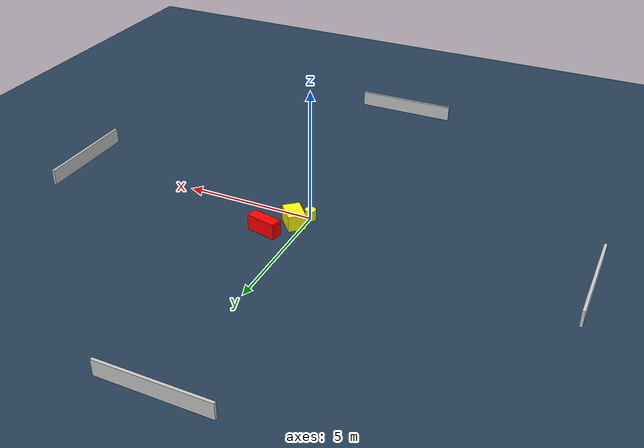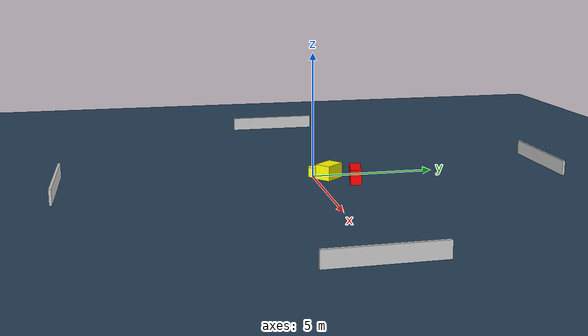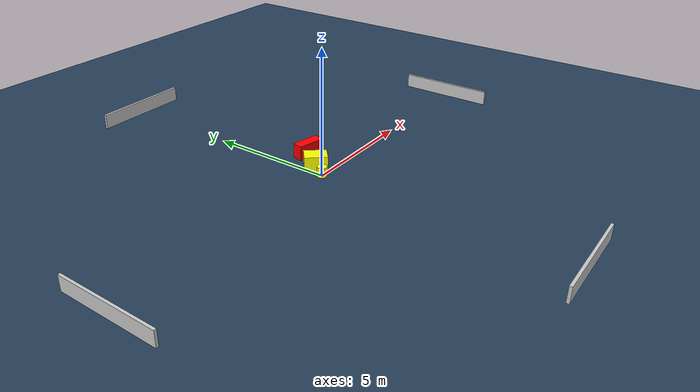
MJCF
<?xml version="1.0" ?>
<mujoco model="generated_environment">
  <option timestep="0.01" integrator="RK4" cone="elliptic"/>
  <default>
    <geom density="1"/>
  </default>
  <asset>
    <texture builtin="gradient" height="3072" name="skybox" rgb1="0.3 0.5 0.7" rgb2="0 0 0" type="skybox" width="512"/>
    <texture builtin="checker" height="300" name="groundplane" rgb1="0.2 0.3 0.4" rgb2="0.1 0.2 0.3" type="2d" width="300"/>
    <material name="groundplane" reflectance="0.2" texrepeat="5 5" texture="groundplane"/>
  </asset>
  <worldbody>
    <light dir="0 0 -1" directional="true" pos="0 0 1.5"/>
    <geom condim="3" friction="0.5 0.005 0.001" material="groundplane" name="floor" pos="0 0 0" size="0 0 0.05" type="plane"/>
    <body name="walls">
      <geom name="wall_1" condim="4" pos="-10.0 0.0 0.3" rgba="0.800000011920929 0.800000011920929 0.800000011920929 1.0" size="0.05 2.0 0.3" type="box"/>
      <geom name="wall_2" condim="4" pos="10.0 0.0 0.3" rgba="0.800000011920929 0.800000011920929 0.800000011920929 1.0" size="0.05 2.0 0.3" type="box"/>
      <geom name="wall_3" condim="4" pos="0.0 -10.0 0.3" rgba="0.800000011920929 0.800000011920929 0.800000011920929 1.0" size="2.0 0.05 0.3" type="box"/>
      <geom name="wall_4" condim="4" pos="0.0 10.0 0.3" rgba="0.800000011920929 0.800000011920929 0.800000011920929 1.0" size="2.0 0.05 0.3" type="box"/>
    </body>
    <body name="robot">
      <joint name="joint_x" type="slide" pos="0 0 0" axis="1 0 0"/>
      <joint name="joint_y" type="slide" pos="0 0 0" axis="0 1 0"/>
      <geom name="robot" type="cylinder" pos="0.0 0.0 0.2" size="0.2 0.2 0.0" mass="5.0" friction="1.0 0.005 0.0001" condim="4" rgba="1.0 1.0 0.0 1.0"/>
    </body>
    <body name="obstacle_1_movable">
      <geom name="obstacle_1_movable" condim="4" pos="0.37755874574758996 0.5839725936716893 0.3" euler="0 0 40.65650932612104" friction="0.0 0.005 0.001" rgba="1.0 1.0 0.0 1.0" size="0.32520987416721214 0.45130037997932154 0.3" type="box" mass="0.1"/>
      <joint type="free"/>
    </body>
    <body name="obstacle_2_static">
      <geom name="obstacle_2_static" condim="4" pos="1.1040393300195712 1.4748397703129035 0.3" euler="0 0 77.71672036961546" friction="0.0 0.005 0.001" rgba="1.0 0.0 0.0 1.0" size="0.21601510262587442 0.5763457644553391 0.3" type="box"/>
    </body>
  </worldbody>
  <actuator>
    <motor name="actuator_x" joint="joint_x" gear="1" ctrlrange="-1 1"/>
    <motor name="actuator_y" joint="joint_y" gear="1" ctrlrange="-1 1"/>
  </actuator>
</mujoco>
